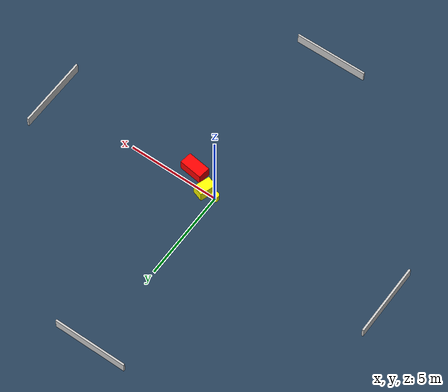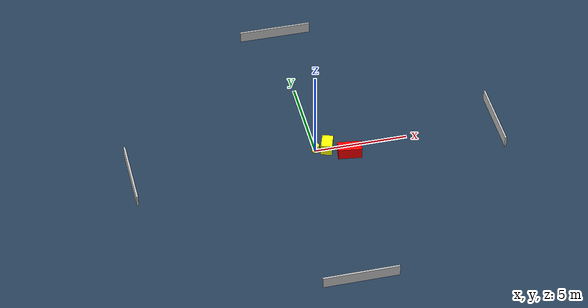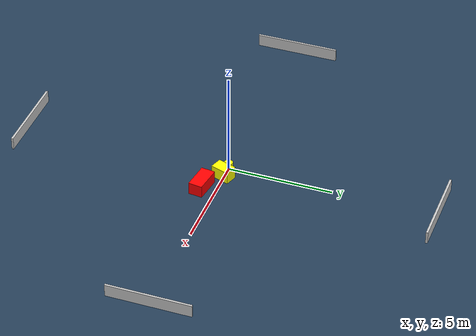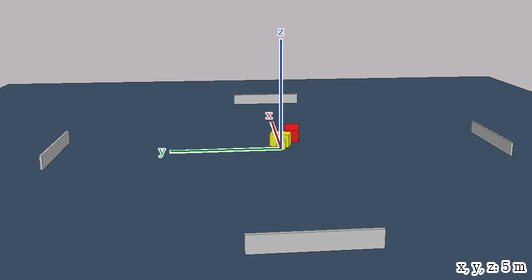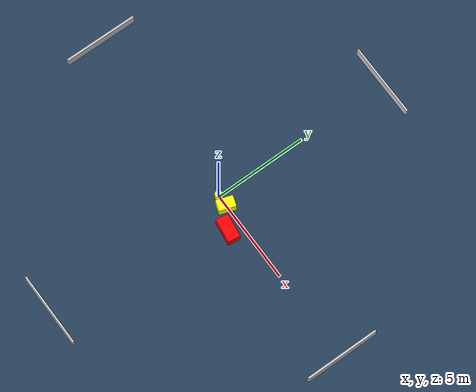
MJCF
<?xml version="1.0" ?>
<mujoco model="generated_environment">
  <option timestep="0.01" integrator="RK4" cone="elliptic"/>
  <default>
    <geom density="1"/>
  </default>
  <asset>
    <texture builtin="gradient" height="3072" name="skybox" rgb1="0.3 0.5 0.7" rgb2="0 0 0" type="skybox" width="512"/>
    <texture builtin="checker" height="300" name="groundplane" rgb1="0.2 0.3 0.4" rgb2="0.1 0.2 0.3" type="2d" width="300"/>
    <material name="groundplane" reflectance="0.2" texrepeat="5 5" texture="groundplane"/>
  </asset>
  <worldbody>
    <light dir="0 0 -1" directional="true" pos="0 0 1.5"/>
    <geom condim="3" friction="0.5 0.005 0.001" material="groundplane" name="floor" pos="0 0 0" size="0 0 0.05" type="plane"/>
    <body name="walls">
      <geom name="wall_1" condim="4" pos="-10.0 0.0 0.3" rgba="0.800000011920929 0.800000011920929 0.800000011920929 1.0" size="0.05 2.0 0.3" type="box"/>
      <geom name="wall_2" condim="4" pos="10.0 0.0 0.3" rgba="0.800000011920929 0.800000011920929 0.800000011920929 1.0" size="0.05 2.0 0.3" type="box"/>
      <geom name="wall_3" condim="4" pos="0.0 -10.0 0.3" rgba="0.800000011920929 0.800000011920929 0.800000011920929 1.0" size="2.0 0.05 0.3" type="box"/>
      <geom name="wall_4" condim="4" pos="0.0 10.0 0.3" rgba="0.800000011920929 0.800000011920929 0.800000011920929 1.0" size="2.0 0.05 0.3" type="box"/>
    </body>
    <body name="robot">
      <joint name="joint_x" type="slide" pos="0 0 0" axis="1 0 0"/>
      <joint name="joint_y" type="slide" pos="0 0 0" axis="0 1 0"/>
      <geom name="robot" type="cylinder" pos="0.0 0.0 0.2" size="0.2 0.2 0.0" mass="5.0" friction="1.0 0.005 0.0001" condim="4" rgba="1.0 1.0 0.0 1.0"/>
    </body>
    <body name="obstacle_1_movable">
      <geom name="obstacle_1_movable" condim="4" pos="0.6297357991888388 -0.02788669512402692 0.3" euler="0 0 341.38771993302186" friction="0.0 0.005 0.001" rgba="1.0 1.0 0.0 1.0" size="0.29838431663324694 0.4559546631426967 0.3" type="box" mass="0.1"/>
      <joint type="free"/>
    </body>
    <body name="obstacle_2_static">
      <geom name="obstacle_2_static" condim="4" pos="1.7113620194381363 -0.6819811155993912 0.3" euler="0 0 262.307423935859" friction="0.0 0.005 0.001" rgba="1.0 0.0 0.0 1.0" size="0.33325065452390323 0.6387082743381782 0.3" type="box"/>
    </body>
  </worldbody>
  <actuator>
    <motor name="actuator_x" joint="joint_x" gear="1" ctrlrange="-1 1"/>
    <motor name="actuator_y" joint="joint_y" gear="1" ctrlrange="-1 1"/>
  </actuator>
</mujoco>
